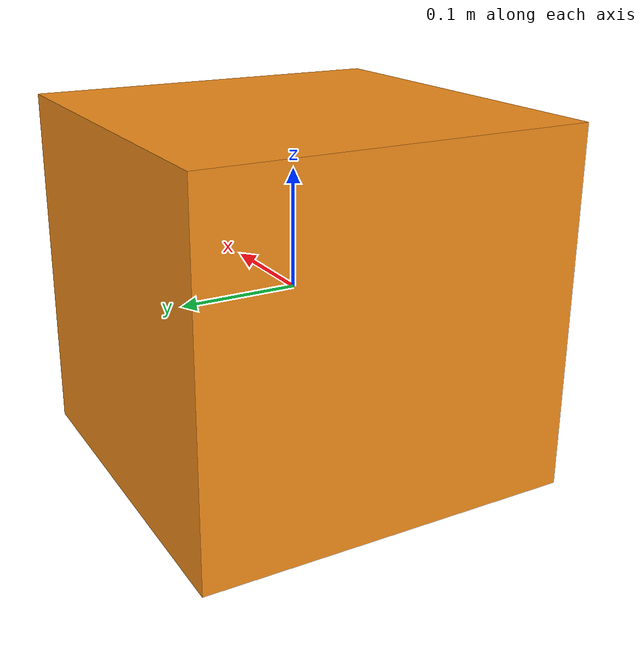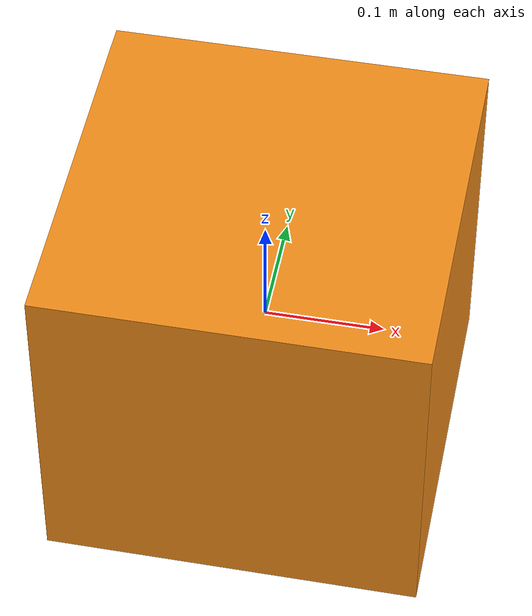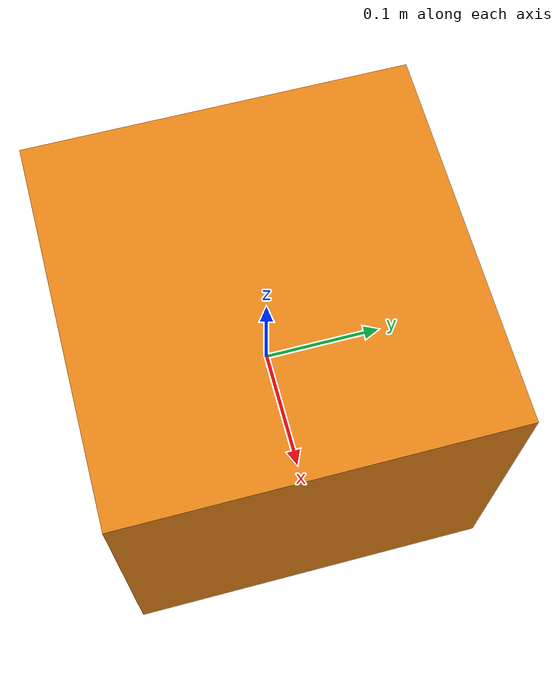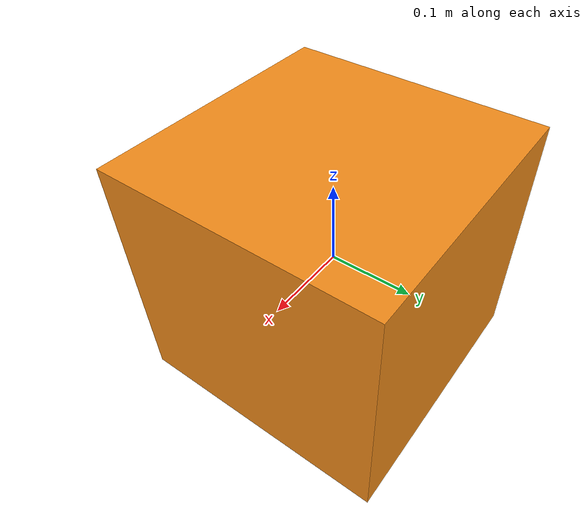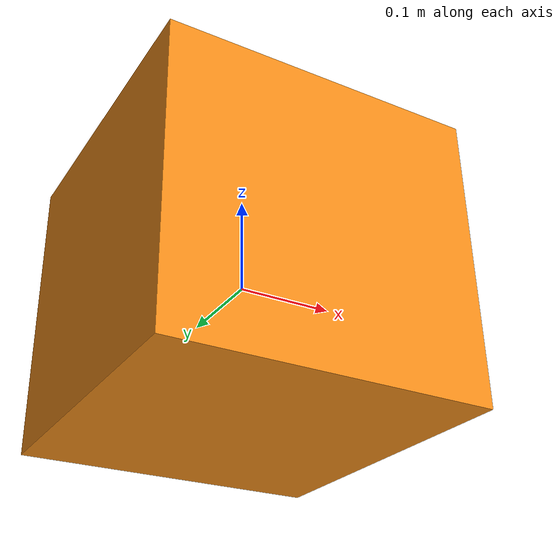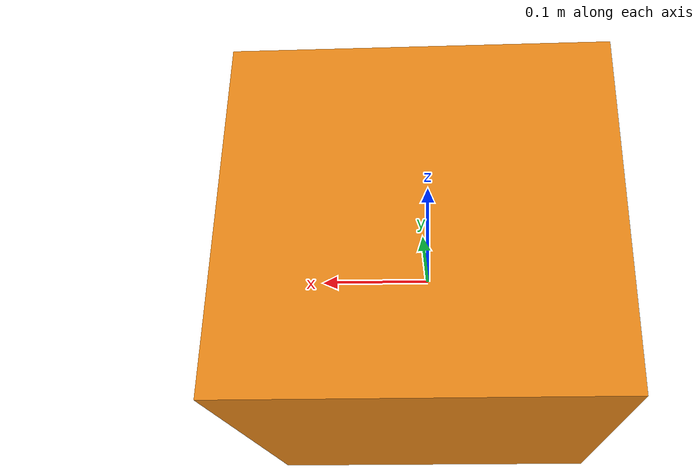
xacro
<?xml version="1.0"?>
<robot xmlns:sensor="http://playerstage.sourceforge.net/gazebo/xmlschema/#sensor"
       xmlns:controller="http://playerstage.sourceforge.net/gazebo/xmlschema/#controller"
       xmlns:interface="http://playerstage.sourceforge.net/gazebo/xmlschema/#interface"
       xmlns:xacro="http://ros.org/wiki/xacro">

  <xacro:property name="material_orange">
    <material name="orange">
      <color rgba="1.0 0.7 0.0 1"/>
    </material>
  </xacro:property>
    <gazebo reference="youbot_obstacle_box">
      <material value="Gazebo/Orange" />
    </gazebo>

    <link name="youbot_obstacle_box">

      <inertial>
         <mass value="1e-2"/>
         <inertia ixx="${1e-2/12}" ixy="0.0" ixz="0.0"
          iyy="${1e-2/12}" iyz="0.0000"
          izz="${1e-2/12}"/>
      </inertial>

      <visual>
       <origin xyz="0 0 0" rpy="0 0 0" />
       <geometry>
         <box size="${2*0.15748} ${2*0.15748} ${0.35*0.8508}" />
       </geometry>
       <material name="orange"/>
       <origin xyz="0 0 0" rpy="0 0 0" />
      </visual>

      <collision>
         <origin xyz="0 0 0" rpy="0 0 0" />
         <geometry>
          <box size="${2*0.15748} ${2*0.15748} ${0.35*0.8508}"  />
         </geometry>
         <material name="orange"/>
      </collision>
    </link>

    <!-- extensions -->

</robot>
